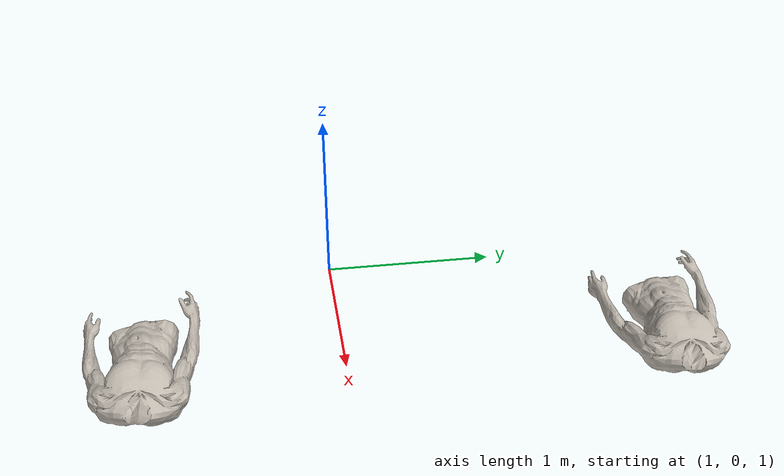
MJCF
<mujoco model="human_torso">
  <asset>
    <mesh file="meshes/Torso.stl" name="human_torso_mesh" scale="0.01 0.01 0.01"/>
    <texture file="../textures/skin.png" type="2d" name="skin-tex"/>
    <material name="skin-material" reflectance="0.5" texrepeat="1 1" texture="skin-tex"/>
  </asset>
  <worldbody>
    <body>
      <body name="collision">
        <geom pos="1 1 1" quat="0.5 -0.5 0.5 -0.5" mesh="human_torso_mesh" type="mesh" material="skin-material" mass="20" group="1"/>
      </body>
      <body name="visual">
        <geom pos="1 4 1" quat="0.5 -0.5 0.5 -0.5" mesh="human_torso_mesh" type="mesh" material="skin-material" group="1" mass="0.0001"/>
      </body>
    </body>
  </worldbody>
</mujoco>
